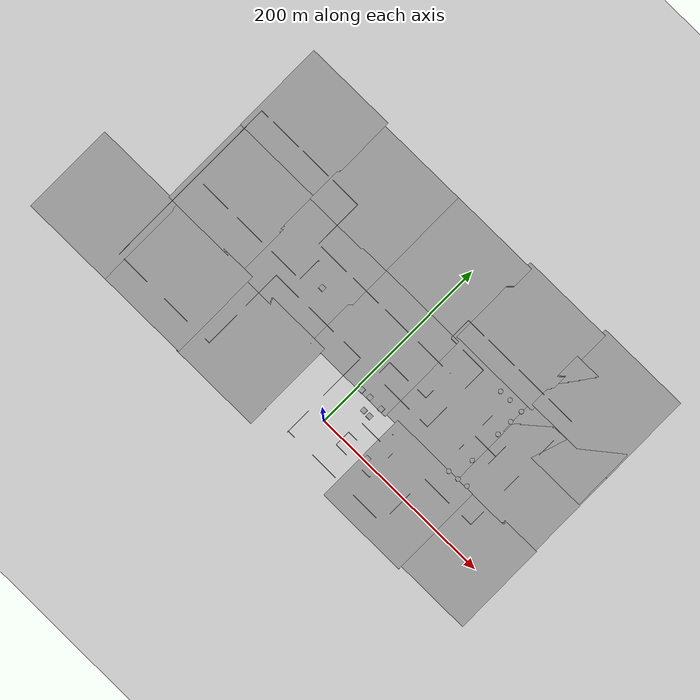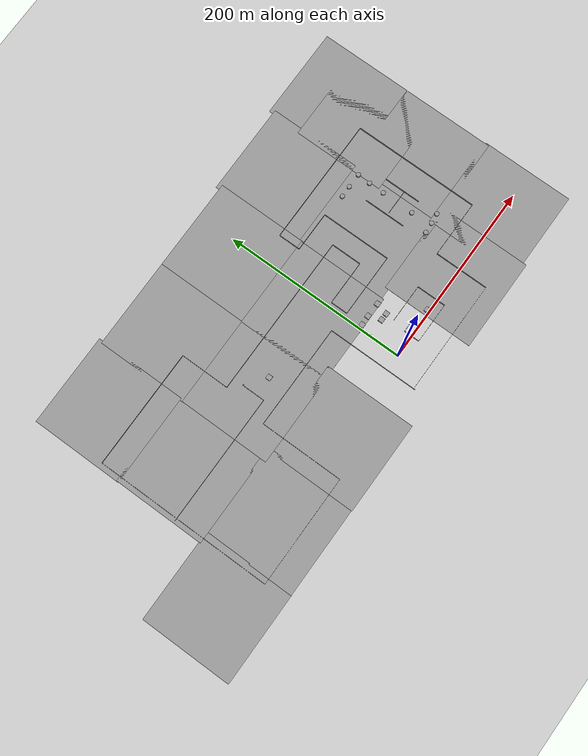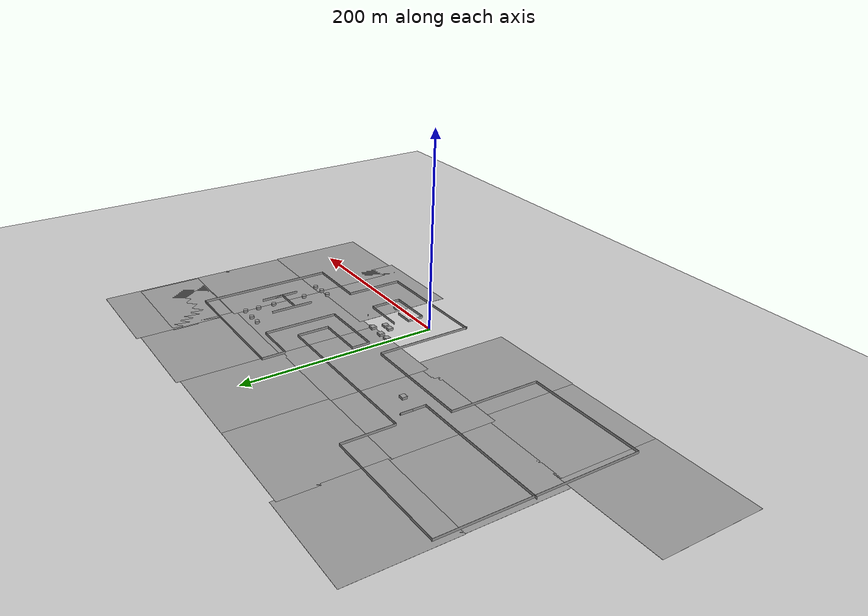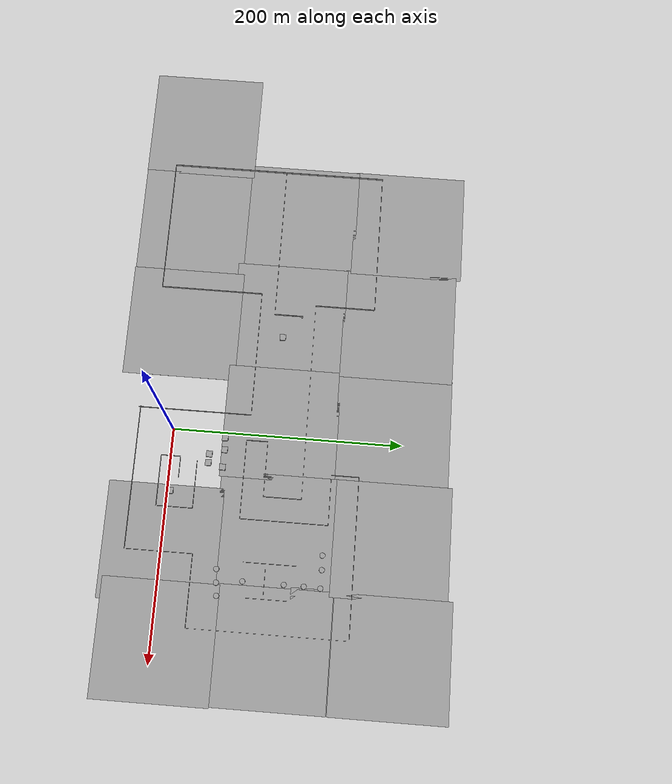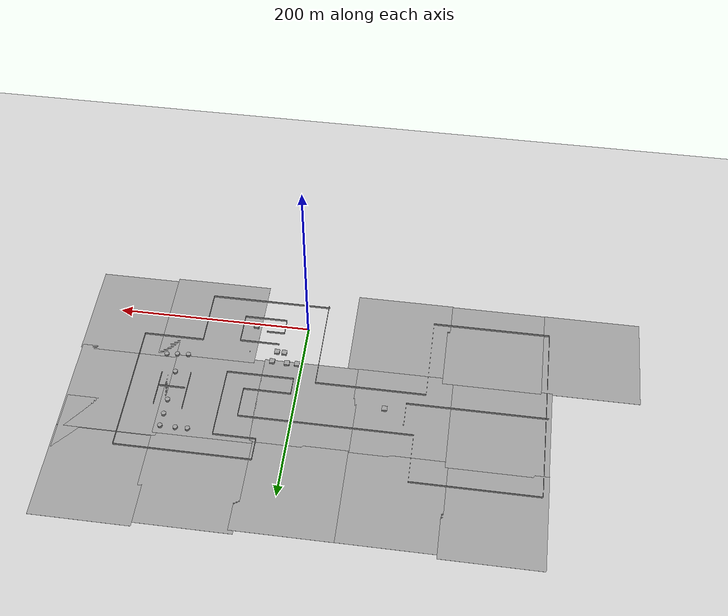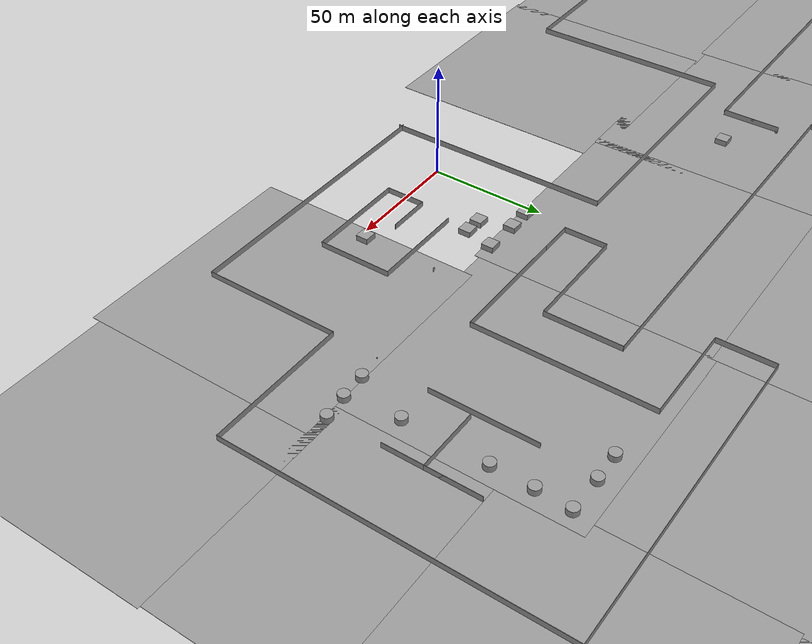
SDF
<sdf version="1.7">
 <world name="default">
  <model name="ground_plane">
   <static>1</static>
   <link name="link">
    <collision name="collision">
     <geometry><plane><normal>0 0 1</normal><size>100 100</size></plane></geometry>
     <surface>
      <contact><collide_bitmask>65535</collide_bitmask></contact>
      <friction><ode><mu>100</mu><mu2>50</mu2></ode></friction>
     </surface>
    </collision>
    <visual name="visual">
     <cast_shadows>0</cast_shadows>
     <geometry><plane><normal>0 0 1</normal><size>100 100</size></plane></geometry>
     <material>
      <script><uri>file://media/materials/scripts/gazebo.material</uri><name>Gazebo/Grey</name></script>
     </material>
    </visual>
   </link>
  </model>
  <model name="mappp">
   <pose>-42.5502 68.484 0 0 -0 0</pose>
   <link name="Door_0">
    <collision name="Door_0_Collision">
     <geometry><box><size>0.9 0.17 2</size></box></geometry>
     <pose>0 0 1 0 -0 0</pose>
    </collision>
    <visual name="Door_0_Visual">
     <pose>0 0 1 0 -0 0</pose>
     <geometry><box><size>0.9 0.17 2</size></box></geometry>
     <material>
      <script><uri>file://media/materials/scripts/gazebo.material</uri><name>Gazebo/Grey</name></script>
     </material>
    </visual>
    <pose>98.0283 -32.2518 0 0 -0 0</pose>
   </link>
   <link name="Wall_0">
    <collision name="Wall_0_Collision">
     <geometry><box><size>124.75 0.15 2.5</size></box></geometry>
     <pose>0 0 1.25 0 -0 0</pose>
    </collision>
    <visual name="Wall_0_Visual">
     <pose>0 0 1.25 0 -0 0</pose>
     <geometry><box><size>124.75 0.15 2.5</size></box></geometry>
     <material>
      <script><uri>file://media/materials/scripts/gazebo.material</uri><name>Gazebo/Grey</name></script>
      <ambient>1 1 1 1</ambient>
     </material>
     <meta><layer>0</layer></meta>
    </visual>
    <pose>86.611 -99.25 0 0 -0 0</pose>
   </link>
   <link name="Wall_1">
    <collision name="Wall_1_Collision">
     <geometry><box><size>58.5 0.15 2.5</size></box></geometry>
     <pose>0 0 1.25 0 -0 0</pose>
    </collision>
    <visual name="Wall_1_Visual">
     <pose>0 0 1.25 0 -0 0</pose>
     <geometry><box><size>58.5 0.15 2.5</size></box></geometry>
     <material>
      <script><uri>file://media/materials/scripts/gazebo.material</uri><name>Gazebo/Grey</name></script>
      <ambient>1 1 1 1</ambient>
     </material>
     <meta><layer>0</layer></meta>
    </visual>
    <pose>148.911 -70.075 0 0 -0 1.5708</pose>
   </link>
   <link name="Wall_10">
    <collision name="Wall_10_Collision">
     <geometry><box><size>18.75 0.15 2.5</size></box></geometry>
     <pose>0 0 1.25 0 -0 0</pose>
    </collision>
    <visual name="Wall_10_Visual">
     <pose>0 0 1.25 0 -0 0</pose>
     <geometry><box><size>18.75 0.15 2.5</size></box></geometry>
     <material>
      <script><uri>file://media/materials/scripts/gazebo.material</uri><name>Gazebo/Grey</name></script>
      <ambient>1 1 1 1</ambient>
     </material>
     <meta><layer>0</layer></meta>
    </visual>
    <pose>47.811 5.55 0 0 -0 1.5708</pose>
   </link>
   <link name="Wall_11">
    <collision name="Wall_11_Collision">
     <geometry><box><size>48.25 0.15 2.5</size></box></geometry>
     <pose>0 0 1.25 0 -0 0</pose>
    </collision>
    <visual name="Wall_11_Visual">
     <pose>0 0 1.25 0 -0 0</pose>
     <geometry><box><size>48.25 0.15 2.5</size></box></geometry>
     <material>
      <script><uri>file://media/materials/scripts/gazebo.material</uri><name>Gazebo/Grey</name></script>
      <ambient>1 1 1 1</ambient>
     </material>
     <meta><layer>0</layer></meta>
    </visual>
    <pose>71.861 14.85 0 0 -0 0</pose>
   </link>
   <link name="Wall_12">
    <collision name="Wall_12_Collision">
     <geometry><box><size>33 0.15 2.5</size></box></geometry>
     <pose>0 0 1.25 0 -0 0</pose>
    </collision>
    <visual name="Wall_12_Visual">
     <pose>0 0 1.25 0 -0 0</pose>
     <geometry><box><size>33 0.15 2.5</size></box></geometry>
     <material>
      <script><uri>file://media/materials/scripts/gazebo.material</uri><name>Gazebo/Grey</name></script>
      <ambient>1 1 1 1</ambient>
     </material>
     <meta><layer>0</layer></meta>
    </visual>
    <pose>95.911 31.275 0 0 -0 1.5708</pose>
   </link>
   <link name="Wall_13">
    <collision name="Wall_13_Collision">
     <geometry><box><size>175.75 0.15 2.5</size></box></geometry>
     <pose>0 0 1.25 0 -0 0</pose>
    </collision>
    <visual name="Wall_13_Visual">
     <pose>0 0 1.25 0 -0 0</pose>
     <geometry><box><size>175.75 0.15 2.5</size></box></geometry>
     <material>
      <script><uri>file://media/materials/scripts/gazebo.material</uri><name>Gazebo/Grey</name></script>
      <ambient>1 1 1 1</ambient>
     </material>
     <meta><layer>0</layer></meta>
    </visual>
    <pose>8.11101 47.7 0 0 -0 3.14159</pose>
   </link>
   <link name="Wall_14">
    <collision name="Wall_14_Collision">
     <geometry><box><size>53.25 0.15 2.5</size></box></geometry>
     <pose>0 0 1.25 0 -0 0</pose>
    </collision>
    <visual name="Wall_14_Visual">
     <pose>0 0 1.25 0 -0 0</pose>
     <geometry><box><size>53.25 0.15 2.5</size></box></geometry>
     <material>
      <script><uri>file://media/materials/scripts/gazebo.material</uri><name>Gazebo/Grey</name></script>
      <ambient>1 1 1 1</ambient>
     </material>
     <meta><layer>0</layer></meta>
    </visual>
    <pose>-79.689 74.25 0 0 -0 1.5708</pose>
   </link>
   <link name="Wall_15">
    <collision name="Wall_15_Collision">
     <geometry><box><size>128.5 0.15 2.5</size></box></geometry>
     <pose>0 0 1.25 0 -0 0</pose>
    </collision>
    <visual name="Wall_15_Visual">
     <pose>0 0 1.25 0 -0 0</pose>
     <geometry><box><size>128.5 0.15 2.5</size></box></geometry>
     <material>
      <script><uri>file://media/materials/scripts/gazebo.material</uri><name>Gazebo/Grey</name></script>
      <ambient>1 1 1 1</ambient>
     </material>
     <meta><layer>0</layer></meta>
    </visual>
    <pose>-143.864 100.8 0 0 -0 3.14159</pose>
   </link>
   <link name="Wall_16">
    <collision name="Wall_16_Collision">
     <geometry><box><size>193.25 0.15 2.5</size></box></geometry>
     <pose>0 0 1.25 0 -0 0</pose>
    </collision>
    <visual name="Wall_16_Visual">
     <pose>0 0 1.25 0 -0 0</pose>
     <geometry><box><size>193.25 0.15 2.5</size></box></geometry>
     <material>
      <script><uri>file://media/materials/scripts/gazebo.material</uri><name>Gazebo/Grey</name></script>
      <ambient>1 1 1 1</ambient>
     </material>
     <meta><layer>0</layer></meta>
    </visual>
    <pose>-208.039 4.25 0 0 -0 -1.5708</pose>
   </link>
   <link name="Wall_17">
    <collision name="Wall_17_Collision">
     <geometry><box><size>120.75 0.15 2.5</size></box></geometry>
     <pose>0 0 1.25 0 -0 0</pose>
    </collision>
    <visual name="Wall_17_Visual">
     <pose>0 0 1.25 0 -0 0</pose>
     <geometry><box><size>120.75 0.15 2.5</size></box></geometry>
     <material>
      <script><uri>file://media/materials/scripts/gazebo.material</uri><name>Gazebo/Grey</name></script>
      <ambient>1 1 1 1</ambient>
     </material>
     <meta><layer>0</layer></meta>
    </visual>
    <pose>-147.739 -92.3 0 0 -0 0</pose>
   </link>
   <link name="Wall_18">
    <collision name="Wall_18_Collision">
     <geometry><box><size>90.75 0.15 2.5</size></box></geometry>
     <pose>0 0 1.25 0 -0 0</pose>
    </collision>
    <visual name="Wall_18_Visual">
     <pose>0 0 1.25 0 -0 0</pose>
     <geometry><box><size>90.75 0.15 2.5</size></box></geometry>
     <material>
      <script><uri>file://media/materials/scripts/gazebo.material</uri><name>Gazebo/Grey</name></script>
      <ambient>1 1 1 1</ambient>
     </material>
     <meta><layer>0</layer></meta>
    </visual>
    <pose>-87.439 -47 0 0 -0 1.5708</pose>
   </link>
   <link name="Wall_19">
    <collision name="Wall_19_Collision">
     <geometry><box><size>112.75 0.15 2.5</size></box></geometry>
     <pose>0 0 1.25 0 -0 0</pose>
    </collision>
    <visual name="Wall_19_Visual">
     <pose>0 0 1.25 0 -0 0</pose>
     <geometry><box><size>112.75 0.15 2.5</size></box></geometry>
     <material>
      <script><uri>file://media/materials/scripts/gazebo.material</uri><name>Gazebo/Grey</name></script>
      <ambient>1 1 1 1</ambient>
     </material>
     <meta><layer>0</layer></meta>
    </visual>
    <pose>-31.139 -1.7 0 0 -0 0</pose>
   </link>
   <link name="Wall_2">
    <collision name="Wall_2_Collision">
     <geometry><box><size>61.75 0.15 2.5</size></box></geometry>
     <pose>0 0 1.25 0 -0 0</pose>
    </collision>
    <visual name="Wall_2_Visual">
     <pose>0 0 1.25 0 -0 0</pose>
     <geometry><box><size>61.75 0.15 2.5</size></box></geometry>
     <material>
      <script><uri>file://media/materials/scripts/gazebo.material</uri><name>Gazebo/Grey</name></script>
      <ambient>1 1 1 1</ambient>
     </material>
     <meta><layer>0</layer></meta>
    </visual>
    <pose>179.711 -40.9 0 0 -0 0</pose>
   </link>
   <link name="Wall_20">
    <collision name="Wall_20_Collision">
     <geometry><box><size>99.25 0.15 2.5</size></box></geometry>
     <pose>0 0 1.25 0 -0 0</pose>
    </collision>
    <visual name="Wall_20_Visual">
     <pose>0 0 1.25 0 -0 0</pose>
     <geometry><box><size>99.25 0.15 2.5</size></box></geometry>
     <material>
      <script><uri>file://media/materials/scripts/gazebo.material</uri><name>Gazebo/Grey</name></script>
      <ambient>1 1 1 1</ambient>
     </material>
     <meta><layer>0</layer></meta>
    </visual>
    <pose>25.161 -51.25 0 0 -0 -1.5708</pose>
   </link>
   <link name="Wall_22">
    <collision name="Wall_22_Collision">
     <geometry><box><size>12.5 0.15 2.5</size></box></geometry>
     <pose>0 0 1.25 0 -0 0</pose>
    </collision>
    <visual name="Wall_22_Visual">
     <pose>0 0 1.25 0 -0 0</pose>
     <geometry><box><size>12.5 0.15 2.5</size></box></geometry>
     <material>
      <script><uri>file://media/materials/scripts/gazebo.material</uri><name>Gazebo/Grey</name></script>
      <ambient>1 1 1 1</ambient>
     </material>
     <meta><layer>0</layer></meta>
    </visual>
    <pose>-68.811 30.5871 0 0 -0 1.5708</pose>
   </link>
   <link name="Wall_23">
    <collision name="Wall_23_Collision">
     <geometry><box><size>25.5 0.15 2.5</size></box></geometry>
     <pose>0 0 1.25 0 -0 0</pose>
    </collision>
    <visual name="Wall_23_Visual">
     <pose>0 0 1.25 0 -0 0</pose>
     <geometry><box><size>25.5 0.15 2.5</size></box></geometry>
     <material>
      <script><uri>file://media/materials/scripts/gazebo.material</uri><name>Gazebo/Grey</name></script>
      <ambient>1 1 1 1</ambient>
     </material>
     <meta><layer>0</layer></meta>
    </visual>
    <pose>-68.811 24.0871 0 0 -0 -1.5708</pose>
   </link>
   <link name="Wall_24">
    <collision name="Wall_24_Collision">
     <geometry><box><size>138.75 0.15 2.5</size></box></geometry>
     <pose>0 0 1.25 0 -0 0</pose>
    </collision>
    <visual name="Wall_24_Visual">
     <pose>0 0 1.25 0 -0 0</pose>
     <geometry><box><size>138.75 0.15 2.5</size></box></geometry>
     <material>
      <script><uri>file://media/materials/scripts/gazebo.material</uri><name>Gazebo/Grey</name></script>
      <ambient>1 1 1 1</ambient>
     </material>
     <meta><layer>0</layer></meta>
    </visual>
    <pose>-138.111 11.4121 0 0 -0 3.14159</pose>
   </link>
   <link name="Wall_25">
    <collision name="Wall_25_Collision">
     <geometry><box><size>3.25 0.15 2.5</size></box></geometry>
     <pose>0 0 1.25 0 -0 0</pose>
    </collision>
    <visual name="Wall_25_Visual">
     <pose>0 0 1.25 0 -0 0</pose>
     <geometry><box><size>3.25 0.15 2.5</size></box></geometry>
     <material>
      <script><uri>file://media/materials/scripts/gazebo.material</uri><name>Gazebo/Grey</name></script>
      <ambient>1 1 1 1</ambient>
     </material>
     <meta><layer>0</layer></meta>
    </visual>
    <pose>-208.961 11.4121 0 0 -0 3.14159</pose>
   </link>
   <link name="Wall_27">
    <collision name="Wall_27_Collision">
     <geometry><box><size>41.25 0.15 2.5</size></box></geometry>
     <pose>0 0 1.25 0 -0 0</pose>
    </collision>
    <visual name="Wall_27_Visual">
     <pose>0 0 1.25 0 -0 0</pose>
     <geometry><box><size>41.25 0.15 2.5</size></box></geometry>
     <material>
      <script><uri>file://media/materials/scripts/gazebo.material</uri><name>Gazebo/Grey</name></script>
      <ambient>1 1 1 1</ambient>
     </material>
     <meta><layer>0</layer></meta>
    </visual>
    <pose>89.9467 -44.9031 0 0 -0 0</pose>
   </link>
   <link name="Wall_28">
    <collision name="Wall_28_Collision">
     <geometry><box><size>31.75 0.15 2.5</size></box></geometry>
     <pose>0 0 1.25 0 -0 0</pose>
    </collision>
    <visual name="Wall_28_Visual">
     <pose>0 0 1.25 0 -0 0</pose>
     <geometry><box><size>31.75 0.15 2.5</size></box></geometry>
     <material>
      <script><uri>file://media/materials/scripts/gazebo.material</uri><name>Gazebo/Grey</name></script>
      <ambient>1 1 1 1</ambient>
     </material>
     <meta><layer>0</layer></meta>
    </visual>
    <pose>110.497 -60.7031 0 0 -0 -1.5708</pose>
   </link>
   <link name="Wall_29">
    <collision name="Wall_29_Collision">
     <geometry><box><size>44.25 0.15 2.5</size></box></geometry>
     <pose>0 0 1.25 0 -0 0</pose>
    </collision>
    <visual name="Wall_29_Visual">
     <pose>0 0 1.25 0 -0 0</pose>
     <geometry><box><size>44.25 0.15 2.5</size></box></geometry>
     <material>
      <script><uri>file://media/materials/scripts/gazebo.material</uri><name>Gazebo/Grey</name></script>
      <ambient>1 1 1 1</ambient>
     </material>
     <meta><layer>0</layer></meta>
    </visual>
    <pose>88.4467 -76.5031 0 0 -0 3.14159</pose>
   </link>
   <link name="Wall_3">
    <collision name="Wall_3_Collision">
     <geometry><box><size>137 0.15 2.5</size></box></geometry>
     <pose>0 0 1.25 0 -0 0</pose>
    </collision>
    <visual name="Wall_3_Visual">
     <pose>0 0 1.25 0 -0 0</pose>
     <geometry><box><size>137 0.15 2.5</size></box></geometry>
     <material>
      <script><uri>file://media/materials/scripts/gazebo.material</uri><name>Gazebo/Grey</name></script>
      <ambient>1 1 1 1</ambient>
     </material>
     <meta><layer>0</layer></meta>
    </visual>
    <pose>210.511 27.525 0 0 -0 1.5708</pose>
   </link>
   <link name="Wall_30">
    <collision name="Wall_30_Collision">
     <geometry><box><size>17 0.15 2.5</size></box></geometry>
     <pose>0 0 1.25 0 -0 0</pose>
    </collision>
    <visual name="Wall_30_Visual">
     <pose>0 0 1.25 0 -0 0</pose>
     <geometry><box><size>17 0.15 2.5</size></box></geometry>
     <material>
      <script><uri>file://media/materials/scripts/gazebo.material</uri><name>Gazebo/Grey</name></script>
      <ambient>1 1 1 1</ambient>
     </material>
     <meta><layer>0</layer></meta>
    </visual>
    <pose>66.3967 -68.0781 0 0 -0 1.5708</pose>
   </link>
   <link name="Wall_31">
    <collision name="Wall_31_Collision">
     <geometry><box><size>18.75 0.15 2.5</size></box></geometry>
     <pose>0 0 1.25 0 -0 0</pose>
    </collision>
    <visual name="Wall_31_Visual">
     <pose>0 0 1.25 0 -0 0</pose>
     <geometry><box><size>18.75 0.15 2.5</size></box></geometry>
     <material>
      <script><uri>file://media/materials/scripts/gazebo.material</uri><name>Gazebo/Grey</name></script>
      <ambient>1 1 1 1</ambient>
     </material>
     <meta><layer>0</layer></meta>
    </visual>
    <pose>75.6967 -59.6531 0 0 -0 0</pose>
   </link>
   <link name="Wall_33">
    <collision name="Wall_33_Collision">
     <geometry><box><size>44.75 0.15 2.5</size></box></geometry>
     <pose>0 0 1.25 0 -0 0</pose>
    </collision>
    <visual name="Wall_33_Visual">
     <pose>0 0 1.25 0 -0 0</pose>
     <geometry><box><size>44.75 0.15 2.5</size></box></geometry>
     <material>
      <script><uri>file://media/materials/scripts/gazebo.material</uri><name>Gazebo/Grey</name></script>
      <ambient>1 1 1 1</ambient>
     </material>
     <meta><layer>0</layer></meta>
    </visual>
    <pose>152.549 25.0918 0 0 -0 -1.5708</pose>
   </link>
   <link name="Wall_35">
    <collision name="Wall_35_Collision">
     <geometry><box><size>27.5 0.15 2.5</size></box></geometry>
     <pose>0 0 1.25 0 -0 0</pose>
    </collision>
    <visual name="Wall_35_Visual">
     <pose>0 0 1.25 0 -0 0</pose>
     <geometry><box><size>27.5 0.15 2.5</size></box></geometry>
     <material>
      <script><uri>file://media/materials/scripts/gazebo.material</uri><name>Gazebo/Grey</name></script>
      <ambient>1 1 1 1</ambient>
     </material>
     <meta><layer>0</layer></meta>
    </visual>
    <pose>168.401 21.7059 0 0 -0 0</pose>
   </link>
   <link name="Wall_36">
    <collision name="Wall_36_Collision">
     <geometry><box><size>22.75 0.15 2.5</size></box></geometry>
     <pose>0 0 1.25 0 -0 0</pose>
    </collision>
    <visual name="Wall_36_Visual">
     <pose>0 0 1.25 0 -0 0</pose>
     <geometry><box><size>22.75 0.15 2.5</size></box></geometry>
     <material>
      <script><uri>file://media/materials/scripts/gazebo.material</uri><name>Gazebo/Grey</name></script>
      <ambient>1 1 1 1</ambient>
     </material>
     <meta><layer>0</layer></meta>
    </visual>
    <pose>182.076 33.0059 0 0 -0 1.5708</pose>
   </link>
   <link name="Wall_37">
    <collision name="Wall_37_Collision">
     <geometry><box><size>39.75 0.15 2.5</size></box></geometry>
     <pose>0 0 1.25 0 -0 0</pose>
    </collision>
    <visual name="Wall_37_Visual">
     <pose>0 0 1.25 0 -0 0</pose>
     <geometry><box><size>39.75 0.15 2.5</size></box></geometry>
     <material>
      <script><uri>file://media/materials/scripts/gazebo.material</uri><name>Gazebo/Grey</name></script>
      <ambient>1 1 1 1</ambient>
     </material>
     <meta><layer>0</layer></meta>
    </visual>
    <pose>182.076 24.5059 0 0 -0 -1.5708</pose>
   </link>
   <link name="Wall_4">
    <collision name="Wall_4_Collision">
     <geometry><box><size>137.75 0.15 2.5</size></box></geometry>
     <pose>0 0 1.25 0 -0 0</pose>
    </collision>
    <visual name="Wall_4_Visual">
     <pose>0 0 1.25 0 -0 0</pose>
     <geometry><box><size>137.75 0.15 2.5</size></box></geometry>
     <material>
      <script><uri>file://media/materials/scripts/gazebo.material</uri><name>Gazebo/Grey</name></script>
      <ambient>1 1 1 1</ambient>
     </material>
     <meta><layer>0</layer></meta>
    </visual>
    <pose>141.711 95.95 0 0 -0 3.14159</pose>
   </link>
   <link name="Wall_5">
    <collision name="Wall_5_Collision">
     <geometry><box><size>24 0.15 2.5</size></box></geometry>
     <pose>0 0 1.25 0 -0 0</pose>
    </collision>
    <visual name="Wall_5_Visual">
     <pose>0 0 1.25 0 -0 0</pose>
     <geometry><box><size>24 0.15 2.5</size></box></geometry>
     <material>
      <script><uri>file://media/materials/scripts/gazebo.material</uri><name>Gazebo/Grey</name></script>
      <ambient>1 1 1 1</ambient>
     </material>
     <meta><layer>0</layer></meta>
    </visual>
    <pose>72.911 84.025 0 0 -0 -1.5708</pose>
   </link>
   <link name="Wall_6">
    <collision name="Wall_6_Collision">
     <geometry><box><size>43.5 0.15 2.5</size></box></geometry>
     <pose>0 0 1.25 0 -0 0</pose>
    </collision>
    <visual name="Wall_6_Visual">
     <pose>0 0 1.25 0 -0 0</pose>
     <geometry><box><size>43.5 0.15 2.5</size></box></geometry>
     <material>
      <script><uri>file://media/materials/scripts/gazebo.material</uri><name>Gazebo/Grey</name></script>
      <ambient>1 1 1 1</ambient>
     </material>
     <meta><layer>0</layer></meta>
    </visual>
    <pose>94.586 72.1 0 0 -0 0</pose>
   </link>
   <link name="Wall_7">
    <collision name="Wall_7_Collision">
     <geometry><box><size>76 0.15 2.5</size></box></geometry>
     <pose>0 0 1.25 0 -0 0</pose>
    </collision>
    <visual name="Wall_7_Visual">
     <pose>0 0 1.25 0 -0 0</pose>
     <geometry><box><size>76 0.15 2.5</size></box></geometry>
     <material>
      <script><uri>file://media/materials/scripts/gazebo.material</uri><name>Gazebo/Grey</name></script>
      <ambient>1 1 1 1</ambient>
     </material>
     <meta><layer>0</layer></meta>
    </visual>
    <pose>116.261 34.175 0 0 -0 -1.5708</pose>
   </link>
   <link name="Wall_8">
    <collision name="Wall_8_Collision">
     <geometry><box><size>54 0.15 2.5</size></box></geometry>
     <pose>0 0 1.25 0 -0 0</pose>
    </collision>
    <visual name="Wall_8_Visual">
     <pose>0 0 1.25 0 -0 0</pose>
     <geometry><box><size>54 0.15 2.5</size></box></geometry>
     <material>
      <script><uri>file://media/materials/scripts/gazebo.material</uri><name>Gazebo/Grey</name></script>
      <ambient>1 1 1 1</ambient>
     </material>
     <meta><layer>0</layer></meta>
    </visual>
    <pose>89.336 -3.75 0 0 -0 3.14159</pose>
   </link>
   <link name="Wall_9">
    <collision name="Wall_9_Collision">
     <geometry><box><size>14.75 0.15 2.5</size></box></geometry>
     <pose>0 0 1.25 0 -0 0</pose>
    </collision>
    <visual name="Wall_9_Visual">
     <pose>0 0 1.25 0 -0 0</pose>
     <geometry><box><size>14.75 0.15 2.5</size></box></geometry>
     <material>
      <script><uri>file://media/materials/scripts/gazebo.material</uri><name>Gazebo/Grey</name></script>
      <ambient>1 1 1 1</ambient>
     </material>
     <meta><layer>0</layer></meta>
    </visual>
    <pose>55.111 -3.75 0 0 -0 3.14159</pose>
   </link>
   <static>1</static>
  </model>
  <model name="unit_box">
   <pose>2.02466 33.3057 1.23802 0 0.000441 0</pose>
   <link name="link">
    <inertial>
     <mass>1</mass>
     <inertia>
      <ixx>0.166667</ixx>
      <ixy>0</ixy>
      <ixz>0</ixz>
      <iyy>0.166667</iyy>
      <iyz>0</iyz>
      <izz>0.166667</izz>
     </inertia>
    </inertial>
    <collision name="collision"><geometry><box><size>0.188814 0.190655 0.40349</size></box></geometry></collision>
    <visual name="visual">
     <geometry><box><size>0.188814 0.190655 0.40349</size></box></geometry>
     <material>
      <script><name>Gazebo/Grey</name><uri>file://media/materials/scripts/gazebo.material</uri></script>
     </material>
    </visual>
   </link>
  </model>
  <model name="unit_box_clone">
   <pose>19.8999 33.5266 1.23802 0 -0.000441 0</pose>
   <link name="link">
    <inertial>
     <mass>1</mass>
     <inertia>
      <ixx>0.166667</ixx>
      <ixy>0</ixy>
      <ixz>0</ixz>
      <iyy>0.166667</iyy>
      <iyz>0</iyz>
      <izz>0.166667</izz>
     </inertia>
    </inertial>
    <collision name="collision"><geometry><box><size>5.29618 5.24499 2.47838</size></box></geometry></collision>
    <visual name="visual">
     <geometry><box><size>5.29618 5.24499 2.47838</size></box></geometry>
     <material>
      <script><name>Gazebo/Grey</name><uri>file://media/materials/scripts/gazebo.material</uri></script>
     </material>
    </visual>
   </link>
  </model>
  <model name="unit_box_clone_0">
   <pose>27.5106 33.2922 1.23802 0 0.000441 0</pose>
   <link name="link">
    <inertial>
     <mass>1</mass>
     <inertia>
      <ixx>0.166667</ixx>
      <ixy>0</ixy>
      <ixz>0</ixz>
      <iyy>0.166667</iyy>
      <iyz>0</iyz>
      <izz>0.166667</izz>
     </inertia>
    </inertial>
    <collision name="collision"><geometry><box><size>5.29618 5.24499 2.47838</size></box></geometry></collision>
    <visual name="visual">
     <geometry><box><size>5.29618 5.24499 2.47838</size></box></geometry>
     <material>
      <script><name>Gazebo/Grey</name><uri>file://media/materials/scripts/gazebo.material</uri></script>
     </material>
    </visual>
   </link>
  </model>
  <model name="unit_box_clone_1">
   <pose>30.5561 45.8856 1.23802 0 -0.000441 0</pose>
   <link name="link">
    <inertial>
     <mass>1</mass>
     <inertia>
      <ixx>0.166667</ixx>
      <ixy>0</ixy>
      <ixz>0</ixz>
      <iyy>0.166667</iyy>
      <iyz>0</iyz>
      <izz>0.166667</izz>
     </inertia>
    </inertial>
    <collision name="collision"><geometry><box><size>5.29618 5.24499 2.47838</size></box></geometry></collision>
    <visual name="visual">
     <geometry><box><size>5.29618 5.24499 2.47838</size></box></geometry>
     <material>
      <script><name>Gazebo/Grey</name><uri>file://media/materials/scripts/gazebo.material</uri></script>
     </material>
    </visual>
   </link>
  </model>
  <model name="unit_box_clone_2">
   <pose>15.198 46.3581 1.23802 0 0.000441 0</pose>
   <link name="link">
    <inertial>
     <mass>1</mass>
     <inertia>
      <ixx>0.166667</ixx>
      <ixy>0</ixy>
      <ixz>0</ixz>
      <iyy>0.166667</iyy>
      <iyz>0</iyz>
      <izz>0.166667</izz>
     </inertia>
    </inertial>
    <collision name="collision"><geometry><box><size>5.29618 5.24499 2.47838</size></box></geometry></collision>
    <visual name="visual">
     <geometry><box><size>5.29618 5.24499 2.47838</size></box></geometry>
     <material>
      <script><name>Gazebo/Grey</name><uri>file://media/materials/scripts/gazebo.material</uri></script>
     </material>
    </visual>
   </link>
  </model>
  <model name="unit_box_clone_3">
   <pose>4.68576 45.9774 1.23802 0 0.000441 0</pose>
   <link name="link">
    <inertial>
     <mass>1</mass>
     <inertia>
      <ixx>0.166667</ixx>
      <ixy>0</ixy>
      <ixz>0</ixz>
      <iyy>0.166667</iyy>
      <iyz>0</iyz>
      <izz>0.166667</izz>
     </inertia>
    </inertial>
    <collision name="collision"><geometry><box><size>5.29618 5.24499 2.47838</size></box></geometry></collision>
    <visual name="visual">
     <geometry><box><size>5.29618 5.24499 2.47838</size></box></geometry>
     <material>
      <script><name>Gazebo/Grey</name><uri>file://media/materials/scripts/gazebo.material</uri></script>
     </material>
    </visual>
   </link>
  </model>
  <model name="unit_box_clone_4">
   <pose>54.2987 2.92759 1.23802 0 0.000441 0</pose>
   <link name="link">
    <inertial>
     <mass>1</mass>
     <inertia>
      <ixx>0.166667</ixx>
      <ixy>0</ixy>
      <ixz>0</ixz>
      <iyy>0.166667</iyy>
      <iyz>0</iyz>
      <izz>0.166667</izz>
     </inertia>
    </inertial>
    <collision name="collision"><geometry><box><size>5.29618 5.24499 2.47838</size></box></geometry></collision>
    <visual name="visual">
     <geometry><box><size>5.29618 5.24499 2.47838</size></box></geometry>
     <material>
      <script><name>Gazebo/Grey</name><uri>file://media/materials/scripts/gazebo.material</uri></script>
     </material>
    </visual>
   </link>
  </model>
  <model name="unit_box_clone_5">
   <pose>-90.3251 88.799 1.23802 0 -0.000441 0</pose>
   <link name="link">
    <inertial>
     <mass>1</mass>
     <inertia>
      <ixx>0.166667</ixx>
      <ixy>0</ixy>
      <ixz>0</ixz>
      <iyy>0.166667</iyy>
      <iyz>0</iyz>
      <izz>0.166667</izz>
     </inertia>
    </inertial>
    <collision name="collision"><geometry><box><size>5.29618 5.24499 2.47838</size></box></geometry></collision>
    <visual name="visual">
     <geometry><box><size>5.29618 5.24499 2.47838</size></box></geometry>
     <material>
      <script><name>Gazebo/Grey</name><uri>file://media/materials/scripts/gazebo.material</uri></script>
     </material>
    </visual>
   </link>
  </model>
  <model name="unit_cylinder">
   <pose>107.404 47.901 1.32831 0 0 -1e-05</pose>
   <link name="link">
    <inertial>
     <mass>1</mass>
     <inertia><ixx>0.145833</ixx><ixy>0</ixy><ixz>0</ixz><iyy>0.145833</iyy><iyz>0</iyz><izz>0.125</izz></inertia>
    </inertial>
    <collision name="collision">
     <geometry><cylinder><radius>0.173014</radius><length>0.376418</length></cylinder></geometry>
    </collision>
    <visual name="visual">
     <geometry><cylinder><radius>0.173014</radius><length>0.376418</length></cylinder></geometry>
     <material>
      <script><name>Gazebo/Grey</name><uri>file://media/materials/scripts/gazebo.material</uri></script>
     </material>
    </visual>
   </link>
  </model>
  <model name="unit_cylinder_clone">
   <pose>117.565 48.9582 1.32831 0 0 -1.7e-05</pose>
   <link name="link">
    <inertial>
     <mass>1</mass>
     <inertia><ixx>0.145833</ixx><ixy>0</ixy><ixz>0</ixz><iyy>0.145833</iyy><iyz>0</iyz><izz>0.125</izz></inertia>
    </inertial>
    <collision name="collision">
     <geometry><cylinder><radius>2.36101</radius><length>2.65663</length></cylinder></geometry>
    </collision>
    <visual name="visual">
     <geometry><cylinder><radius>2.36101</radius><length>2.65663</length></cylinder></geometry>
     <material>
      <script><name>Gazebo/Grey</name><uri>file://media/materials/scripts/gazebo.material</uri></script>
     </material>
    </visual>
   </link>
  </model>
  <model name="unit_cylinder_clone_0">
   <pose>128.838 49.7617 1.32831 -1e-06 1e-06 -1.7e-05</pose>
   <link name="link">
    <inertial>
     <mass>1</mass>
     <inertia><ixx>0.145833</ixx><ixy>0</ixy><ixz>0</ixz><iyy>0.145833</iyy><iyz>0</iyz><izz>0.125</izz></inertia>
    </inertial>
    <collision name="collision">
     <geometry><cylinder><radius>2.36101</radius><length>2.65663</length></cylinder></geometry>
    </collision>
    <visual name="visual">
     <geometry><cylinder><radius>2.36101</radius><length>2.65663</length></cylinder></geometry>
     <material>
      <script><name>Gazebo/Grey</name><uri>file://media/materials/scripts/gazebo.material</uri></script>
     </material>
    </visual>
   </link>
  </model>
  <model name="unit_cylinder_clone_1">
   <pose>139.645 51.028 1.32831 0 -0 -1.7e-05</pose>
   <link name="link">
    <inertial>
     <mass>1</mass>
     <inertia><ixx>0.145833</ixx><ixy>0</ixy><ixz>0</ixz><iyy>0.145833</iyy><iyz>0</iyz><izz>0.125</izz></inertia>
    </inertial>
    <collision name="collision">
     <geometry><cylinder><radius>2.36101</radius><length>2.65663</length></cylinder></geometry>
    </collision>
    <visual name="visual">
     <geometry><cylinder><radius>2.36101</radius><length>2.65663</length></cylinder></geometry>
     <material>
      <script><name>Gazebo/Grey</name><uri>file://media/materials/scripts/gazebo.material</uri></script>
     </material>
    </visual>
   </link>
  </model>
  <model name="unit_cylinder_clone_2">
   <pose>126.125 71.8027 1.32831 -1e-06 1e-06 -1.7e-05</pose>
   <link name="link">
    <inertial>
     <mass>1</mass>
     <inertia><ixx>0.145833</ixx><ixy>0</ixy><ixz>0</ixz><iyy>0.145833</iyy><iyz>0</iyz><izz>0.125</izz></inertia>
    </inertial>
    <collision name="collision">
     <geometry><cylinder><radius>2.36101</radius><length>2.65663</length></cylinder></geometry>
    </collision>
    <visual name="visual">
     <geometry><cylinder><radius>2.36101</radius><length>2.65663</length></cylinder></geometry>
     <material>
      <script><name>Gazebo/Grey</name><uri>file://media/materials/scripts/gazebo.material</uri></script>
     </material>
    </visual>
   </link>
  </model>
  <model name="unit_cylinder_clone_3">
   <pose>126.262 106.678 1.32831 0 -0 -1.7e-05</pose>
   <link name="link">
    <inertial>
     <mass>1</mass>
     <inertia><ixx>0.145833</ixx><ixy>0</ixy><ixz>0</ixz><iyy>0.145833</iyy><iyz>0</iyz><izz>0.125</izz></inertia>
    </inertial>
    <collision name="collision">
     <geometry><cylinder><radius>2.36101</radius><length>2.65663</length></cylinder></geometry>
    </collision>
    <visual name="visual">
     <geometry><cylinder><radius>2.36101</radius><length>2.65663</length></cylinder></geometry>
     <material>
      <script><name>Gazebo/Grey</name><uri>file://media/materials/scripts/gazebo.material</uri></script>
     </material>
    </visual>
   </link>
  </model>
  <model name="unit_cylinder_clone_4">
   <pose>126.39 123.57 1.32831 0 -0 -1.7e-05</pose>
   <link name="link">
    <inertial>
     <mass>1</mass>
     <inertia><ixx>0.145833</ixx><ixy>0</ixy><ixz>0</ixz><iyy>0.145833</iyy><iyz>0</iyz><izz>0.125</izz></inertia>
    </inertial>
    <collision name="collision">
     <geometry><cylinder><radius>2.36101</radius><length>2.65663</length></cylinder></geometry>
    </collision>
    <visual name="visual">
     <geometry><cylinder><radius>2.36101</radius><length>2.65663</length></cylinder></geometry>
     <material>
      <script><name>Gazebo/Grey</name><uri>file://media/materials/scripts/gazebo.material</uri></script>
     </material>
    </visual>
   </link>
  </model>
  <model name="unit_cylinder_clone_5">
   <pose>126.969 137.652 1.32831 0 -0 -1.7e-05</pose>
   <link name="link">
    <inertial>
     <mass>1</mass>
     <inertia><ixx>0.145833</ixx><ixy>0</ixy><ixz>0</ixz><iyy>0.145833</iyy><iyz>0</iyz><izz>0.125</izz></inertia>
    </inertial>
    <collision name="collision">
     <geometry><cylinder><radius>2.36101</radius><length>2.65663</length></cylinder></geometry>
    </collision>
    <visual name="visual">
     <geometry><cylinder><radius>2.36101</radius><length>2.65663</length></cylinder></geometry>
     <material>
      <script><name>Gazebo/Grey</name><uri>file://media/materials/scripts/gazebo.material</uri></script>
     </material>
    </visual>
   </link>
  </model>
  <model name="unit_cylinder_clone_6">
   <pose>111.583 137.864 1.32831 0 -0 -1.7e-05</pose>
   <link name="link">
    <inertial>
     <mass>1</mass>
     <inertia><ixx>0.145833</ixx><ixy>0</ixy><ixz>0</ixz><iyy>0.145833</iyy><iyz>0</iyz><izz>0.125</izz></inertia>
    </inertial>
    <collision name="collision">
     <geometry><cylinder><radius>2.36101</radius><length>2.65663</length></cylinder></geometry>
    </collision>
    <visual name="visual">
     <geometry><cylinder><radius>2.36101</radius><length>2.65663</length></cylinder></geometry>
     <material>
      <script><name>Gazebo/Grey</name><uri>file://media/materials/scripts/gazebo.material</uri></script>
     </material>
    </visual>
   </link>
  </model>
  <model name="unit_cylinder_clone_7">
   <pose>99.3916 137.548 1.32831 0 -0 -1.7e-05</pose>
   <link name="link">
    <inertial>
     <mass>1</mass>
     <inertia><ixx>0.145833</ixx><ixy>0</ixy><ixz>0</ixz><iyy>0.145833</iyy><iyz>0</iyz><izz>0.125</izz></inertia>
    </inertial>
    <collision name="collision">
     <geometry><cylinder><radius>2.36101</radius><length>2.65663</length></cylinder></geometry>
    </collision>
    <visual name="visual">
     <geometry><cylinder><radius>2.36101</radius><length>2.65663</length></cylinder></geometry>
     <material>
      <script><name>Gazebo/Grey</name><uri>file://media/materials/scripts/gazebo.material</uri></script>
     </material>
    </visual>
   </link>
  </model>
  <model name="ground_plane_0">
   <static>1</static>
   <link name="link">
    <collision name="collision">
     <geometry><plane><normal>0 0 1</normal><size>100 100</size></plane></geometry>
     <surface>
      <contact><collide_bitmask>65535</collide_bitmask></contact>
      <friction><ode><mu>100</mu><mu2>50</mu2></ode></friction>
     </surface>
    </collision>
    <visual name="visual">
     <cast_shadows>0</cast_shadows>
     <geometry><plane><normal>0 0 1</normal><size>100 100</size></plane></geometry>
     <material>
      <script><uri>file://media/materials/scripts/gazebo.material</uri><name>Gazebo/Grey</name></script>
     </material>
    </visual>
   </link>
   <pose>98.9297 -0.406482 0 0 -0 0</pose>
  </model>
  <model name="ground_plane_1">
   <static>1</static>
   <link name="link">
    <collision name="collision">
     <geometry><plane><normal>0 0 1</normal><size>100 100</size></plane></geometry>
     <surface>
      <contact><collide_bitmask>65535</collide_bitmask></contact>
      <friction><ode><mu>100</mu><mu2>50</mu2></ode></friction>
     </surface>
    </collision>
    <visual name="visual">
     <cast_shadows>0</cast_shadows>
     <geometry><plane><normal>0 0 1</normal><size>100 100</size></plane></geometry>
     <material>
      <script><uri>file://media/materials/scripts/gazebo.material</uri><name>Gazebo/Grey</name></script>
     </material>
    </visual>
   </link>
   <pose>180.125 3.13442 0 0 -0 0</pose>
  </model>
  <model name="ground_plane_2">
   <static>1</static>
   <link name="link">
    <collision name="collision">
     <geometry><plane><normal>0 0 1</normal><size>100 100</size></plane></geometry>
     <surface>
      <contact><collide_bitmask>65535</collide_bitmask></contact>
      <friction><ode><mu>100</mu><mu2>50</mu2></ode></friction>
     </surface>
    </collision>
    <visual name="visual">
     <cast_shadows>0</cast_shadows>
     <geometry><plane><normal>0 0 1</normal><size>100 100</size></plane></geometry>
     <material>
      <script><uri>file://media/materials/scripts/gazebo.material</uri><name>Gazebo/Grey</name></script>
     </material>
    </visual>
   </link>
   <pose>179.097 99.092 0 0 -0 0</pose>
  </model>
  <model name="ground_plane_3">
   <static>1</static>
   <link name="link">
    <collision name="collision">
     <geometry><plane><normal>0 0 1</normal><size>100 100</size></plane></geometry>
     <surface>
      <contact><collide_bitmask>65535</collide_bitmask></contact>
      <friction><ode><mu>100</mu><mu2>50</mu2></ode></friction>
     </surface>
    </collision>
    <visual name="visual">
     <cast_shadows>0</cast_shadows>
     <geometry><plane><normal>0 0 1</normal><size>100 100</size></plane></geometry>
     <material>
      <script><uri>file://media/materials/scripts/gazebo.material</uri><name>Gazebo/Grey</name></script>
     </material>
    </visual>
   </link>
   <pose>179.177 199.669 0 0 -0 0</pose>
  </model>
  <model name="ground_plane_4">
   <static>1</static>
   <link name="link">
    <collision name="collision">
     <geometry><plane><normal>0 0 1</normal><size>100 100</size></plane></geometry>
     <surface>
      <contact><collide_bitmask>65535</collide_bitmask></contact>
      <friction><ode><mu>100</mu><mu2>50</mu2></ode></friction>
     </surface>
    </collision>
    <visual name="visual">
     <cast_shadows>0</cast_shadows>
     <geometry><plane><normal>0 0 1</normal><size>100 100</size></plane></geometry>
     <material>
      <script><uri>file://media/materials/scripts/gazebo.material</uri><name>Gazebo/Grey</name></script>
     </material>
    </visual>
   </link>
   <pose>83.4225 95.6364 0 0 -0 0</pose>
  </model>
  <model name="ground_plane_5">
   <static>1</static>
   <link name="link">
    <collision name="collision">
     <geometry><plane><normal>0 0 1</normal><size>100 100</size></plane></geometry>
     <surface>
      <contact><collide_bitmask>65535</collide_bitmask></contact>
      <friction><ode><mu>100</mu><mu2>50</mu2></ode></friction>
     </surface>
    </collision>
    <visual name="visual">
     <cast_shadows>0</cast_shadows>
     <geometry><plane><normal>0 0 1</normal><size>100 100</size></plane></geometry>
     <material>
      <script><uri>file://media/materials/scripts/gazebo.material</uri><name>Gazebo/Grey</name></script>
     </material>
    </visual>
   </link>
   <pose>83.3677 195.514 0 0 -0 0</pose>
  </model>
  <model name="ground_plane_6">
   <static>1</static>
   <link name="link">
    <collision name="collision">
     <geometry><plane><normal>0 0 1</normal><size>100 100</size></plane></geometry>
     <surface>
      <contact><collide_bitmask>65535</collide_bitmask></contact>
      <friction><ode><mu>100</mu><mu2>50</mu2></ode></friction>
     </surface>
    </collision>
    <visual name="visual">
     <cast_shadows>0</cast_shadows>
     <geometry><plane><normal>0 0 1</normal><size>100 100</size></plane></geometry>
     <material>
      <script><uri>file://media/materials/scripts/gazebo.material</uri><name>Gazebo/Grey</name></script>
     </material>
    </visual>
   </link>
   <pose>-11.7572 93.6017 0 0 -0 0</pose>
  </model>
  <model name="ground_plane_7">
   <static>1</static>
   <link name="link">
    <collision name="collision">
     <geometry><plane><normal>0 0 1</normal><size>100 100</size></plane></geometry>
     <surface>
      <contact><collide_bitmask>65535</collide_bitmask></contact>
      <friction><ode><mu>100</mu><mu2>50</mu2></ode></friction>
     </surface>
    </collision>
    <visual name="visual">
     <cast_shadows>0</cast_shadows>
     <geometry><plane><normal>0 0 1</normal><size>100 100</size></plane></geometry>
     <material>
      <script><uri>file://media/materials/scripts/gazebo.material</uri><name>Gazebo/Grey</name></script>
     </material>
    </visual>
   </link>
   <pose>-97.6565 -0.700769 0 0 -0 0</pose>
  </model>
  <model name="ground_plane_8">
   <static>1</static>
   <link name="link">
    <collision name="collision">
     <geometry><plane><normal>0 0 1</normal><size>100 100</size></plane></geometry>
     <surface>
      <contact><collide_bitmask>65535</collide_bitmask></contact>
      <friction><ode><mu>100</mu><mu2>50</mu2></ode></friction>
     </surface>
    </collision>
    <visual name="visual">
     <cast_shadows>0</cast_shadows>
     <geometry><plane><normal>0 0 1</normal><size>100 100</size></plane></geometry>
     <material>
      <script><uri>file://media/materials/scripts/gazebo.material</uri><name>Gazebo/Grey</name></script>
     </material>
    </visual>
   </link>
   <pose>-194.852 -0.029844 0 0 -0 0</pose>
  </model>
  <model name="ground_plane_9">
   <static>1</static>
   <link name="link">
    <collision name="collision">
     <geometry><plane><normal>0 0 1</normal><size>100 100</size></plane></geometry>
     <surface>
      <contact><collide_bitmask>65535</collide_bitmask></contact>
      <friction><ode><mu>100</mu><mu2>50</mu2></ode></friction>
     </surface>
    </collision>
    <visual name="visual">
     <cast_shadows>0</cast_shadows>
     <geometry><plane><normal>0 0 1</normal><size>100 100</size></plane></geometry>
     <material>
      <script><uri>file://media/materials/scripts/gazebo.material</uri><name>Gazebo/Grey</name></script>
     </material>
    </visual>
   </link>
   <pose>-293.503 -0.244298 0 0 -0 0</pose>
  </model>
  <model name="ground_plane_10">
   <static>1</static>
   <link name="link">
    <collision name="collision">
     <geometry><plane><normal>0 0 1</normal><size>100 100</size></plane></geometry>
     <surface>
      <contact><collide_bitmask>65535</collide_bitmask></contact>
      <friction><ode><mu>100</mu><mu2>50</mu2></ode></friction>
     </surface>
    </collision>
    <visual name="visual">
     <cast_shadows>0</cast_shadows>
     <geometry><plane><normal>0 0 1</normal><size>100 100</size></plane></geometry>
     <material>
      <script><uri>file://media/materials/scripts/gazebo.material</uri><name>Gazebo/Grey</name></script>
     </material>
    </visual>
   </link>
   <pose>-205.875 97.9807 0 0 -0 0</pose>
  </model>
  <model name="ground_plane_11">
   <static>1</static>
   <link name="link">
    <collision name="collision">
     <geometry><plane><normal>0 0 1</normal><size>100 100</size></plane></geometry>
     <surface>
      <contact><collide_bitmask>65535</collide_bitmask></contact>
      <friction><ode><mu>100</mu><mu2>50</mu2></ode></friction>
     </surface>
    </collision>
    <visual name="visual">
     <cast_shadows>0</cast_shadows>
     <geometry><plane><normal>0 0 1</normal><size>100 100</size></plane></geometry>
     <material>
      <script><uri>file://media/materials/scripts/gazebo.material</uri><name>Gazebo/Grey</name></script>
     </material>
    </visual>
   </link>
   <pose>-206.309 195.595 0 0 -0 0</pose>
  </model>
  <model name="ground_plane_12">
   <static>1</static>
   <link name="link">
    <collision name="collision">
     <geometry><plane><normal>0 0 1</normal><size>100 100</size></plane></geometry>
     <surface>
      <contact><collide_bitmask>65535</collide_bitmask></contact>
      <friction><ode><mu>100</mu><mu2>50</mu2></ode></friction>
     </surface>
    </collision>
    <visual name="visual">
     <cast_shadows>0</cast_shadows>
     <geometry><plane><normal>0 0 1</normal><size>100 100</size></plane></geometry>
     <material>
      <script><uri>file://media/materials/scripts/gazebo.material</uri><name>Gazebo/Grey</name></script>
     </material>
    </visual>
   </link>
   <pose>-108.324 93.2342 0 0 -0 0</pose>
  </model>
  <model name="ground_plane_13">
   <static>1</static>
   <link name="link">
    <collision name="collision">
     <geometry><plane><normal>0 0 1</normal><size>100 100</size></plane></geometry>
     <surface>
      <contact><collide_bitmask>65535</collide_bitmask></contact>
      <friction><ode><mu>100</mu><mu2>50</mu2></ode></friction>
     </surface>
    </collision>
    <visual name="visual">
     <cast_shadows>0</cast_shadows>
     <geometry><plane><normal>0 0 1</normal><size>100 100</size></plane></geometry>
     <material>
      <script><uri>file://media/materials/scripts/gazebo.material</uri><name>Gazebo/Grey</name></script>
     </material>
    </visual>
   </link>
   <pose>-108.679 191.569 0 0 -0 0</pose>
  </model>
  <model name="ground_plane_14">
   <static>1</static>
   <link name="link">
    <collision name="collision">
     <geometry><plane><normal>0 0 1</normal><size>100 100</size></plane></geometry>
     <surface>
      <contact><collide_bitmask>65535</collide_bitmask></contact>
      <friction><ode><mu>100</mu><mu2>50</mu2></ode></friction>
     </surface>
    </collision>
    <visual name="visual">
     <cast_shadows>0</cast_shadows>
     <geometry><plane><normal>0 0 1</normal><size>100 100</size></plane></geometry>
     <material>
      <script><uri>file://media/materials/scripts/gazebo.material</uri><name>Gazebo/Grey</name></script>
     </material>
    </visual>
   </link>
   <pose>-11.1138 191.699 0 0 -0 0</pose>
  </model>
  <model name="ground_plane_15">
   <static>1</static>
   <link name="link">
    <collision name="collision">
     <geometry><plane><normal>0 0 1</normal><size>100 100</size></plane></geometry>
     <surface>
      <contact><collide_bitmask>65535</collide_bitmask></contact>
      <friction><ode><mu>100</mu><mu2>50</mu2></ode></friction>
     </surface>
    </collision>
    <visual name="visual">
     <cast_shadows>0</cast_shadows>
     <geometry><plane><normal>0 0 1</normal><size>100 100</size></plane></geometry>
     <material>
      <script><uri>file://media/materials/scripts/gazebo.material</uri><name>Gazebo/Grey</name></script>
     </material>
    </visual>
   </link>
   <pose>177.663 162.94 0 0 -0 0</pose>
  </model>
  <model name="unit_box_0">
   <pose>-110.786 104.866 0.499999 0 -2e-06 -5e-06</pose>
   <link name="link">
    <inertial>
     <mass>1</mass>
     <inertia>
      <ixx>0.166667</ixx>
      <ixy>0</ixy>
      <ixz>0</ixz>
      <iyy>0.166667</iyy>
      <iyz>0</iyz>
      <izz>0.166667</izz>
     </inertia>
    </inertial>
    <collision name="collision"><geometry><box><size>1 1.00001 1</size></box></geometry></collision>
    <visual name="visual">
     <geometry><box><size>1 1.00001 1</size></box></geometry>
     <material>
      <script><name>Gazebo/Grey</name><uri>file://media/materials/scripts/gazebo.material</uri></script>
     </material>
    </visual>
   </link>
  </model>
 </world>
</sdf>
